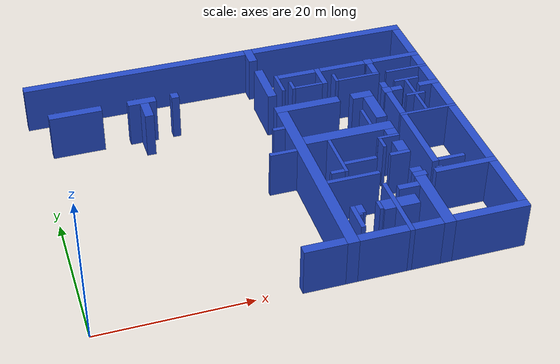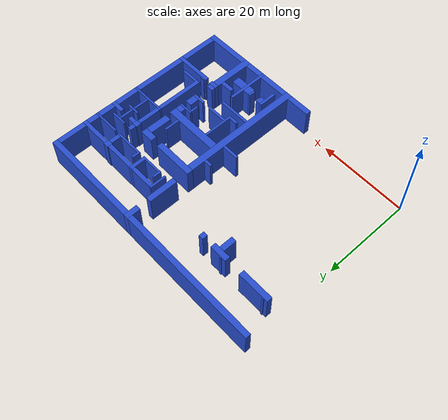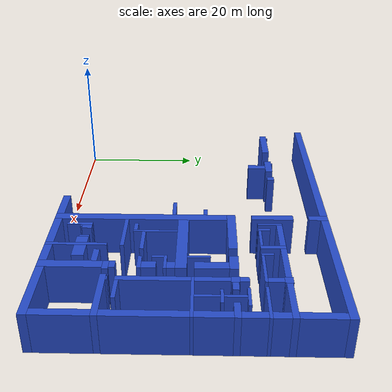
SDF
<sdf version="1.6">
 <world name="default">
  <include><uri>model://sun</uri></include>
  <model name="Area_3_WAJ15-01">
   <static>true</static>
   <link name="link">
    <visual name="cell_101_0">
     <pose>5.2529 34.747 3.2766 0 0 0</pose>
     <geometry><box><size>7.153 1.2192 6.5532</size></box></geometry>
     <material>
      <script><uri>file://media/materials/scripts/gazebo.material</uri><name>Gazebo/Blue</name></script>
     </material>
    </visual>
    <collision name="cell_101_0">
     <pose>5.2529 34.747 3.2766 0 0 0</pose>
     <geometry><box><size>7.153 1.2192 6.5532</size></box></geometry>
     <surface><friction><ode><mu>100</mu><mu2>50</mu2></ode></friction></surface>
    </collision>
    <visual name="cell_101_1">
     <pose>2.667 35.45185 3.2766 0 0 0</pose>
     <geometry><box><size>0.4572 0.1905 6.5532</size></box></geometry>
     <material>
      <script><uri>file://media/materials/scripts/gazebo.material</uri><name>Gazebo/Blue</name></script>
     </material>
    </visual>
    <collision name="cell_101_1">
     <pose>2.667 35.45185 3.2766 0 0 0</pose>
     <geometry><box><size>0.4572 0.1905 6.5532</size></box></geometry>
     <surface><friction><ode><mu>100</mu><mu2>50</mu2></ode></friction></surface>
    </collision>
   </link>
  </model>
  <model name="Area_3_WAI21-00">
   <static>true</static>
   <link name="link">
    <visual name="cell_102_0">
     <pose>14.3634 34.747 3.2766 0 0 0</pose>
     <geometry><box><size>3.886 1.2192 6.5532</size></box></geometry>
     <material>
      <script><uri>file://media/materials/scripts/gazebo.material</uri><name>Gazebo/Blue</name></script>
     </material>
    </visual>
    <collision name="cell_102_0">
     <pose>14.3634 34.747 3.2766 0 0 0</pose>
     <geometry><box><size>3.886 1.2192 6.5532</size></box></geometry>
     <surface><friction><ode><mu>100</mu><mu2>50</mu2></ode></friction></surface>
    </collision>
    <visual name="cell_102_1">
     <pose>14.63 32.6135 3.2766 0 0 0</pose>
     <geometry><box><size>1.2192 3.0478 6.5532</size></box></geometry>
     <material>
      <script><uri>file://media/materials/scripts/gazebo.material</uri><name>Gazebo/Blue</name></script>
     </material>
    </visual>
    <collision name="cell_102_1">
     <pose>14.63 32.6135 3.2766 0 0 0</pose>
     <geometry><box><size>1.2192 3.0478 6.5532</size></box></geometry>
     <surface><friction><ode><mu>100</mu><mu2>50</mu2></ode></friction></surface>
    </collision>
    <visual name="cell_102_2">
     <pose>13.5634 35.45185 3.2766 0 0 0</pose>
     <geometry><box><size>0.4572 0.1905 6.5532</size></box></geometry>
     <material>
      <script><uri>file://media/materials/scripts/gazebo.material</uri><name>Gazebo/Blue</name></script>
     </material>
    </visual>
    <collision name="cell_102_2">
     <pose>13.5634 35.45185 3.2766 0 0 0</pose>
     <geometry><box><size>0.4572 0.1905 6.5532</size></box></geometry>
     <surface><friction><ode><mu>100</mu><mu2>50</mu2></ode></friction></surface>
    </collision>
   </link>
  </model>
  <model name="Area_3_WAI21-01">
   <static>true</static>
   <link name="link">
    <visual name="cell_103_0">
     <pose>18.9734 34.747 3.2766 0 0 0</pose>
     <geometry><box><size>1.0668 1.2192 6.5535</size></box></geometry>
     <material>
      <script><uri>file://media/materials/scripts/gazebo.material</uri><name>Gazebo/Blue</name></script>
     </material>
    </visual>
    <collision name="cell_103_0">
     <pose>18.9734 34.747 3.2766 0 0 0</pose>
     <geometry><box><size>1.0668 1.2192 6.5535</size></box></geometry>
     <surface><friction><ode><mu>100</mu><mu2>50</mu2></ode></friction></surface>
    </collision>
   </link>
  </model>
  <model name="Area_8_WAG24-03">
   <static>true</static>
   <link name="link">
    <visual name="cell_106_0">
     <pose>44.196 15.23365 3.2766 0 0 0</pose>
     <geometry><box><size>1.524 2.1209 6.5532</size></box></geometry>
     <material>
      <script><uri>file://media/materials/scripts/gazebo.material</uri><name>Gazebo/Blue</name></script>
     </material>
    </visual>
    <collision name="cell_106_0">
     <pose>44.196 15.23365 3.2766 0 0 0</pose>
     <geometry><box><size>1.524 2.1209 6.5532</size></box></geometry>
     <surface><friction><ode><mu>100</mu><mu2>50</mu2></ode></friction></surface>
    </collision>
    <visual name="cell_106_1">
     <pose>43.5864 13.8684 3.2766 0 0 0</pose>
     <geometry><box><size>2.7432 0.6096 6.5532</size></box></geometry>
     <material>
      <script><uri>file://media/materials/scripts/gazebo.material</uri><name>Gazebo/Blue</name></script>
     </material>
    </visual>
    <collision name="cell_106_1">
     <pose>43.5864 13.8684 3.2766 0 0 0</pose>
     <geometry><box><size>2.7432 0.6096 6.5532</size></box></geometry>
     <surface><friction><ode><mu>100</mu><mu2>50</mu2></ode></friction></surface>
    </collision>
   </link>
  </model>
  <model name="Area_8_WAF24-04">
   <static>true</static>
   <link name="link">
    <visual name="cell_116_0">
     <pose>43.4719 27.3558 3.2766 0 0 0</pose>
     <geometry><box><size>2.9718 1.3716 6.5532</size></box></geometry>
     <material>
      <script><uri>file://media/materials/scripts/gazebo.material</uri><name>Gazebo/Blue</name></script>
     </material>
    </visual>
    <collision name="cell_116_0">
     <pose>43.4719 27.3558 3.2766 0 0 0</pose>
     <geometry><box><size>2.9718 1.3716 6.5532</size></box></geometry>
     <surface><friction><ode><mu>100</mu><mu2>50</mu2></ode></friction></surface>
    </collision>
    <visual name="cell_116_1">
     <pose>44.196 24.18715 3.2766 0 0 0</pose>
     <geometry><box><size>1.524 4.9657 6.5532</size></box></geometry>
     <material>
      <script><uri>file://media/materials/scripts/gazebo.material</uri><name>Gazebo/Blue</name></script>
     </material>
    </visual>
    <collision name="cell_116_1">
     <pose>44.196 24.18715 3.2766 0 0 0</pose>
     <geometry><box><size>1.524 4.9657 6.5532</size></box></geometry>
     <surface><friction><ode><mu>100</mu><mu2>50</mu2></ode></friction></surface>
    </collision>
   </link>
  </model>
  <model name="Area_10_WAF23-02">
   <static>true</static>
   <link name="link">
    <visual name="cell_108_0">
     <pose>33.9469 3.6703 3.2766 0 0 0</pose>
     <geometry><box><size>0.6096 3.9878 6.5532</size></box></geometry>
     <material>
      <script><uri>file://media/materials/scripts/gazebo.material</uri><name>Gazebo/Blue</name></script>
     </material>
    </visual>
    <collision name="cell_108_0">
     <pose>33.9469 3.6703 3.2766 0 0 0</pose>
     <geometry><box><size>0.6096 3.9878 6.5532</size></box></geometry>
     <surface><friction><ode><mu>100</mu><mu2>50</mu2></ode></friction></surface>
    </collision>
    <visual name="cell_108_1">
     <pose>34.72795 4.9022 3.2766 0 0 0</pose>
     <geometry><box><size>0.9528 1.524 6.5532</size></box></geometry>
     <material>
      <script><uri>file://media/materials/scripts/gazebo.material</uri><name>Gazebo/Blue</name></script>
     </material>
    </visual>
    <collision name="cell_108_1">
     <pose>34.72795 4.9022 3.2766 0 0 0</pose>
     <geometry><box><size>0.9528 1.524 6.5532</size></box></geometry>
     <surface><friction><ode><mu>100</mu><mu2>50</mu2></ode></friction></surface>
    </collision>
    <visual name="cell_108_2">
     <pose>34.49935 3.9878 3.2766 0 0 0</pose>
     <geometry><box><size>0.4953 0.3048 6.5532</size></box></geometry>
     <material>
      <script><uri>file://media/materials/scripts/gazebo.material</uri><name>Gazebo/Blue</name></script>
     </material>
    </visual>
    <collision name="cell_108_2">
     <pose>34.49935 3.9878 3.2766 0 0 0</pose>
     <geometry><box><size>0.4953 0.3048 6.5532</size></box></geometry>
     <surface><friction><ode><mu>100</mu><mu2>50</mu2></ode></friction></surface>
    </collision>
   </link>
  </model>
  <model name="Area_3_4_boundary_WAI23-00">
   <static>true</static>
   <link name="link">
    <pose>31.6989 33.88985 3.2766 0 0 0</pose>
    <visual name="cell_109_0">
     <geometry><box><size>1.2294 6.5911 6.5532</size></box></geometry>
     <material>
      <script><uri>file://media/materials/scripts/gazebo.material</uri><name>Gazebo/Blue</name></script>
     </material>
    </visual>
    <collision name="cell_109_0">
     <geometry><box><size>1.2294 6.5911 6.5532</size></box></geometry>
     <surface><friction><ode><mu>100</mu><mu2>50</mu2></ode></friction></surface>
    </collision>
   </link>
  </model>
  <model name="outwall">
   <static>true</static>
   <link name="link">
    <visual name="cell_111_0">
     <pose>15.2398 42.0622 3.2766 0 0 0</pose>
     <geometry><box><size>31.6988 1.2192 6.5532</size></box></geometry>
     <material>
      <script><uri>file://media/materials/scripts/gazebo.material</uri><name>Gazebo/Blue</name></script>
     </material>
    </visual>
    <collision name="cell_111_0">
     <pose>15.2398 42.0622 3.2766 0 0 0</pose>
     <geometry><box><size>31.6988 1.2192 6.5532</size></box></geometry>
     <surface><friction><ode><mu>100</mu><mu2>50</mu2></ode></friction></surface>
    </collision>
    <visual name="cell_111_1">
     <pose>31.6989 41.1478 3.2766 0 0 0</pose>
     <geometry><box><size>1.2194 3.048 6.5532</size></box></geometry>
     <material>
      <script><uri>file://media/materials/scripts/gazebo.material</uri><name>Gazebo/Blue</name></script>
     </material>
    </visual>
    <collision name="cell_111_1">
     <pose>31.6989 41.1478 3.2766 0 0 0</pose>
     <geometry><box><size>1.2194 3.048 6.5532</size></box></geometry>
     <surface><friction><ode><mu>100</mu><mu2>50</mu2></ode></friction></surface>
    </collision>
    <visual name="cell_111_2">
     <pose>43.5862 42.0622 3.2766 0 0 0</pose>
     <geometry><box><size>22.5552 1.2192 6.5532</size></box></geometry>
     <material>
      <script><uri>file://media/materials/scripts/gazebo.material</uri><name>Gazebo/Blue</name></script>
     </material>
    </visual>
    <collision name="cell_111_2">
     <pose>43.5862 42.0622 3.2766 0 0 0</pose>
     <geometry><box><size>22.5552 1.2192 6.5532</size></box></geometry>
     <surface><friction><ode><mu>100</mu><mu2>50</mu2></ode></friction></surface>
    </collision>
    <visual name="cell_111_3">
     <pose>54.2542 38.3284 3.2766 0 0 0</pose>
     <geometry><box><size>1.2192 6.2484 6.5532</size></box></geometry>
     <material>
      <script><uri>file://media/materials/scripts/gazebo.material</uri><name>Gazebo/Blue</name></script>
     </material>
    </visual>
    <collision name="cell_111_3">
     <pose>54.2542 38.3284 3.2766 0 0 0</pose>
     <geometry><box><size>1.2192 6.2484 6.5532</size></box></geometry>
     <surface><friction><ode><mu>100</mu><mu2>50</mu2></ode></friction></surface>
    </collision>
    <visual name="cell_111_4">
     <pose>33.604 33.2992 3.2766 0 0 0</pose>
     <geometry><box><size>0.4572 3.810 6.5532</size></box></geometry>
     <material>
      <script><uri>file://media/materials/scripts/gazebo.material</uri><name>Gazebo/Blue</name></script>
     </material>
    </visual>
    <collision name="cell_111_4">
     <pose>33.604 33.2992 3.2766 0 0 0</pose>
     <geometry><box><size>0.4572 3.810 6.5532</size></box></geometry>
     <surface><friction><ode><mu>100</mu><mu2>50</mu2></ode></friction></surface>
    </collision>
    <visual name="cell_111_5">
     <pose>36.5377 34.747 3.2766 0 0 0</pose>
     <geometry><box><size>5.4102 0.9144 6.5532</size></box></geometry>
     <material>
      <script><uri>file://media/materials/scripts/gazebo.material</uri><name>Gazebo/Blue</name></script>
     </material>
    </visual>
    <collision name="cell_111_5">
     <pose>36.5377 34.747 3.2766 0 0 0</pose>
     <geometry><box><size>5.4102 0.9144 6.5532</size></box></geometry>
     <surface><friction><ode><mu>100</mu><mu2>50</mu2></ode></friction></surface>
    </collision>
    <visual name="cell_111_6">
     <pose>35.0899 32.3086 3.2766 0 0 0</pose>
     <geometry><box><size>0.4572 1.8288 6.5532</size></box></geometry>
     <material>
      <script><uri>file://media/materials/scripts/gazebo.material</uri><name>Gazebo/Blue</name></script>
     </material>
    </visual>
    <collision name="cell_111_6">
     <pose>35.0899 32.3086 3.2766 0 0 0</pose>
     <geometry><box><size>0.4572 1.8288 6.5532</size></box></geometry>
     <surface><friction><ode><mu>100</mu><mu2>50</mu2></ode></friction></surface>
    </collision>
    <visual name="cell_111_7">
     <pose>37.28065 31.6228 3.2766 0 0 0</pose>
     <geometry><box><size>3.9243 0.4572 6.5532</size></box></geometry>
     <material>
      <script><uri>file://media/materials/scripts/gazebo.material</uri><name>Gazebo/Blue</name></script>
     </material>
    </visual>
    <collision name="cell_111_7">
     <pose>37.28065 31.6228 3.2766 0 0 0</pose>
     <geometry><box><size>3.9243 0.4572 6.5532</size></box></geometry>
     <surface><friction><ode><mu>100</mu><mu2>50</mu2></ode></friction></surface>
    </collision>
    <visual name="cell_111_8">
     <pose>39.6238 33.2992 3.2766 0 0 0</pose>
     <geometry><box><size>0.762 3.81 6.5532</size></box></geometry>
     <material>
      <script><uri>file://media/materials/scripts/gazebo.material</uri><name>Gazebo/Blue</name></script>
     </material>
    </visual>
    <collision name="cell_111_8">
     <pose>39.6238 33.2992 3.2766 0 0 0</pose>
     <geometry><box><size>0.762 3.81 6.5532</size></box></geometry>
     <surface><friction><ode><mu>100</mu><mu2>50</mu2></ode></friction></surface>
    </collision>
    <visual name="cell_111_9">
     <pose>43.3195 34.747 3.2766 0 0 0</pose>
     <geometry><box><size>6.6294 0.9144 6.5532</size></box></geometry>
     <material>
      <script><uri>file://media/materials/scripts/gazebo.material</uri><name>Gazebo/Blue</name></script>
     </material>
    </visual>
    <collision name="cell_111_9">
     <pose>43.3195 34.747 3.2766 0 0 0</pose>
     <geometry><box><size>6.6294 0.9144 6.5532</size></box></geometry>
     <surface><friction><ode><mu>100</mu><mu2>50</mu2></ode></friction></surface>
    </collision>
    <visual name="cell_111_10">
     <pose>41.4145 32.3086 3.2766 0 0 0</pose>
     <geometry><box><size>0.4572 1.8288 6.5532</size></box></geometry>
     <material>
      <script><uri>file://media/materials/scripts/gazebo.material</uri><name>Gazebo/Blue</name></script>
     </material>
    </visual>
    <collision name="cell_111_10">
     <pose>41.4145 32.3086 3.2766 0 0 0</pose>
     <geometry><box><size>0.4572 1.8288 6.5532</size></box></geometry>
     <surface><friction><ode><mu>100</mu><mu2>50</mu2></ode></friction></surface>
    </collision>
    <visual name="cell_111_11">
     <pose>44.67205 31.6228 3.2766 0 0 0</pose>
     <geometry><box><size>6.0579 0.4572 6.5532</size></box></geometry>
     <material>
      <script><uri>file://media/materials/scripts/gazebo.material</uri><name>Gazebo/Blue</name></script>
     </material>
    </visual>
    <collision name="cell_111_11">
     <pose>44.67205 31.6228 3.2766 0 0 0</pose>
     <geometry><box><size>6.0579 0.4572 6.5532</size></box></geometry>
     <surface><friction><ode><mu>100</mu><mu2>50</mu2></ode></friction></surface>
    </collision>
    <visual name="cell_111_12">
     <pose>47.2438 32.9944 3.2766 0 0 0</pose>
     <geometry><box><size>0.9144 2.286 6.5532</size></box></geometry>
     <material>
      <script><uri>file://media/materials/scripts/gazebo.material</uri><name>Gazebo/Blue</name></script>
     </material>
    </visual>
    <collision name="cell_111_12">
     <pose>47.2438 32.9944 3.2766 0 0 0</pose>
     <geometry><box><size>0.9144 2.286 6.5532</size></box></geometry>
     <surface><friction><ode><mu>100</mu><mu2>50</mu2></ode></friction></surface>
    </collision>
    <visual name="cell_111_13">
     <pose>47.2438 34.747 3.2766 0 0 0</pose>
     <geometry><box><size>1.2192 1.2192 6.5532</size></box></geometry>
     <material>
      <script><uri>file://media/materials/scripts/gazebo.material</uri><name>Gazebo/Blue</name></script>
     </material>
    </visual>
    <collision name="cell_111_13">
     <pose>47.2438 34.747 3.2766 0 0 0</pose>
     <geometry><box><size>1.2192 1.2192 6.5532</size></box></geometry>
     <surface><friction><ode><mu>100</mu><mu2>50</mu2></ode></friction></surface>
    </collision>
    <visual name="cell_111_14">
     <pose>51.3586 34.747 3.2766 0 0 0</pose>
     <geometry><box><size>7.0104 0.9144 6.5532</size></box></geometry>
     <material>
      <script><uri>file://media/materials/scripts/gazebo.material</uri><name>Gazebo/Blue</name></script>
     </material>
    </visual>
    <collision name="cell_111_14">
     <pose>51.3586 34.747 3.2766 0 0 0</pose>
     <geometry><box><size>7.0104 0.9144 6.5532</size></box></geometry>
     <surface><friction><ode><mu>100</mu><mu2>50</mu2></ode></friction></surface>
    </collision>
    <visual name="cell_111_15">
     <pose>54.2542 33.0706 3.2766 0 0 0</pose>
     <geometry><box><size>1.2192 2.4384 6.5532</size></box></geometry>
     <material>
      <script><uri>file://media/materials/scripts/gazebo.material</uri><name>Gazebo/Blue</name></script>
     </material>
    </visual>
    <collision name="cell_111_15">
     <pose>54.2542 33.0706 3.2766 0 0 0</pose>
     <geometry><box><size>1.2192 2.4384 6.5532</size></box></geometry>
     <surface><friction><ode><mu>100</mu><mu2>50</mu2></ode></friction></surface>
    </collision>
    <visual name="cell_111_16">
     <pose>51.79675 31.6228 3.2766 0 0 0</pose>
     <geometry><box><size>6.1341 0.4572 6.5532</size></box></geometry>
     <material>
      <script><uri>file://media/materials/scripts/gazebo.material</uri><name>Gazebo/Blue</name></script>
     </material>
    </visual>
    <collision name="cell_111_16">
     <pose>51.79675 31.6228 3.2766 0 0 0</pose>
     <geometry><box><size>6.1341 0.4572 6.5532</size></box></geometry>
     <surface><friction><ode><mu>100</mu><mu2>50</mu2></ode></friction></surface>
    </collision>
    <visual name="cell_111_17">
     <pose>54.2542 29.6417 3.2766 0 0 0</pose>
     <geometry><box><size>1.2192 3.505 6.5532</size></box></geometry>
     <material>
      <script><uri>file://media/materials/scripts/gazebo.material</uri><name>Gazebo/Blue</name></script>
     </material>
    </visual>
    <collision name="cell_111_17">
     <pose>54.2542 29.6417 3.2766 0 0 0</pose>
     <geometry><box><size>1.2192 3.505 6.5532</size></box></geometry>
     <surface><friction><ode><mu>100</mu><mu2>50</mu2></ode></friction></surface>
    </collision>
    <visual name="cell_111_18">
     <pose>53.3779 27.432 3.2766 0 0 0</pose>
     <geometry><box><size>2.9718 0.9144 6.5532</size></box></geometry>
     <material>
      <script><uri>file://media/materials/scripts/gazebo.material</uri><name>Gazebo/Blue</name></script>
     </material>
    </visual>
    <collision name="cell_111_18">
     <pose>53.3779 27.432 3.2766 0 0 0</pose>
     <geometry><box><size>2.9718 0.9144 6.5532</size></box></geometry>
     <surface><friction><ode><mu>100</mu><mu2>50</mu2></ode></friction></surface>
    </collision>
    <visual name="cell_111_19">
     <pose>54.2542 24.384 3.2766 0 0 0</pose>
     <geometry><box><size>1.2192 5.1816 6.5532</size></box></geometry>
     <material>
      <script><uri>file://media/materials/scripts/gazebo.material</uri><name>Gazebo/Blue</name></script>
     </material>
    </visual>
    <collision name="cell_111_19">
     <pose>54.2542 24.384 3.2766 0 0 0</pose>
     <geometry><box><size>1.2192 5.1816 6.5532</size></box></geometry>
     <surface><friction><ode><mu>100</mu><mu2>50</mu2></ode></friction></surface>
    </collision>
    <visual name="cell_111_20">
     <pose>47.2438 28.70835 3.2766 0 0 0</pose>
     <geometry><box><size>0.9144 1.3335 6.5532</size></box></geometry>
     <material>
      <script><uri>file://media/materials/scripts/gazebo.material</uri><name>Gazebo/Blue</name></script>
     </material>
    </visual>
    <collision name="cell_111_20">
     <pose>47.2438 28.70835 3.2766 0 0 0</pose>
     <geometry><box><size>0.9144 1.3335 6.5532</size></box></geometry>
     <surface><friction><ode><mu>100</mu><mu2>50</mu2></ode></friction></surface>
    </collision>
    <visual name="cell_111_21">
     <pose>47.2438 27.432 3.2766 0 0 0</pose>
     <geometry><box><size>1.2192 1.2192 6.5532</size></box></geometry>
     <material>
      <script><uri>file://media/materials/scripts/gazebo.material</uri><name>Gazebo/Blue</name></script>
     </material>
    </visual>
    <collision name="cell_111_21">
     <pose>47.2438 27.432 3.2766 0 0 0</pose>
     <geometry><box><size>1.2192 1.2192 6.5532</size></box></geometry>
     <surface><friction><ode><mu>100</mu><mu2>50</mu2></ode></friction></surface>
    </collision>
    <visual name="cell_111_22">
     <pose>48.6535 27.432 3.2766 0 0 0</pose>
     <geometry><box><size>1.6002 0.9144 6.5532</size></box></geometry>
     <material>
      <script><uri>file://media/materials/scripts/gazebo.material</uri><name>Gazebo/Blue</name></script>
     </material>
    </visual>
    <collision name="cell_111_22">
     <pose>48.6535 27.432 3.2766 0 0 0</pose>
     <geometry><box><size>1.6002 0.9144 6.5532</size></box></geometry>
     <surface><friction><ode><mu>100</mu><mu2>50</mu2></ode></friction></surface>
    </collision>
    <visual name="cell_111_23">
     <pose>47.2438 24.3078 3.2766 0 0 0</pose>
     <geometry><box><size>0.9144 5.0292 6.5532</size></box></geometry>
     <material>
      <script><uri>file://media/materials/scripts/gazebo.material</uri><name>Gazebo/Blue</name></script>
     </material>
    </visual>
    <collision name="cell_111_23">
     <pose>47.2438 24.3078 3.2766 0 0 0</pose>
     <geometry><box><size>0.9144 5.0292 6.5532</size></box></geometry>
     <surface><friction><ode><mu>100</mu><mu2>50</mu2></ode></friction></surface>
    </collision>
    <visual name="cell_111_24">
     <pose>47.2438 16.0782 3.2766 0 0 0</pose>
     <geometry><box><size>0.9144 10.5156 6.5532</size></box></geometry>
     <material>
      <script><uri>file://media/materials/scripts/gazebo.material</uri><name>Gazebo/Blue</name></script>
     </material>
    </visual>
    <collision name="cell_111_24">
     <pose>47.2438 16.0782 3.2766 0 0 0</pose>
     <geometry><box><size>0.9144 10.5156 6.5532</size></box></geometry>
     <surface><friction><ode><mu>100</mu><mu2>50</mu2></ode></friction></surface>
    </collision>
    <visual name="cell_111_25">
     <pose>49.5298 11.1252 3.2766 0 0 0</pose>
     <geometry><box><size>3.6576 0.6096 6.5532</size></box></geometry>
     <material>
      <script><uri>file://media/materials/scripts/gazebo.material</uri><name>Gazebo/Blue</name></script>
     </material>
    </visual>
    <collision name="cell_111_25">
     <pose>49.5298 11.1252 3.2766 0 0 0</pose>
     <geometry><box><size>3.6576 0.6096 6.5532</size></box></geometry>
     <surface><friction><ode><mu>100</mu><mu2>50</mu2></ode></friction></surface>
    </collision>
    <visual name="cell_111_26">
     <pose>50.8252 21.5646 3.2766 0 0 0</pose>
     <geometry><box><size>8.0772 0.4572 6.5532</size></box></geometry>
     <material>
      <script><uri>file://media/materials/scripts/gazebo.material</uri><name>Gazebo/Blue</name></script>
     </material>
    </visual>
    <collision name="cell_111_26">
     <pose>50.8252 21.5646 3.2766 0 0 0</pose>
     <geometry><box><size>8.0772 0.4572 6.5532</size></box></geometry>
     <surface><friction><ode><mu>100</mu><mu2>50</mu2></ode></friction></surface>
    </collision>
    <visual name="cell_111_27">
     <pose>50.7871 29.1465 3.2766 0 0 0</pose>
     <geometry><box><size>3.5814 0.4572 6.5532</size></box></geometry>
     <material>
      <script><uri>file://media/materials/scripts/gazebo.material</uri><name>Gazebo/Blue</name></script>
     </material>
    </visual>
    <collision name="cell_111_27">
     <pose>50.7871 29.1465 3.2766 0 0 0</pose>
     <geometry><box><size>3.5814 0.4572 6.5532</size></box></geometry>
     <surface><friction><ode><mu>100</mu><mu2>50</mu2></ode></friction></surface>
    </collision>
    <visual name="cell_111_28">
     <pose>50.6728 27.33675 3.2766 0 0 0</pose>
     <geometry><box><size>0.4572 3.1623 6.5532</size></box></geometry>
     <material>
      <script><uri>file://media/materials/scripts/gazebo.material</uri><name>Gazebo/Blue</name></script>
     </material>
    </visual>
    <collision name="cell_111_28">
     <pose>50.6728 27.33675 3.2766 0 0 0</pose>
     <geometry><box><size>0.4572 3.1623 6.5532</size></box></geometry>
     <surface><friction><ode><mu>100</mu><mu2>50</mu2></ode></friction></surface>
    </collision>
    <visual name="cell_111_29">
     <pose>50.6728 25.527 3.2766 0 0 0</pose>
     <geometry><box><size>2.7432 0.4572 6.5532</size></box></geometry>
     <material>
      <script><uri>file://media/materials/scripts/gazebo.material</uri><name>Gazebo/Blue</name></script>
     </material>
    </visual>
    <collision name="cell_111_29">
     <pose>50.6728 25.527 3.2766 0 0 0</pose>
     <geometry><box><size>2.7432 0.4572 6.5532</size></box></geometry>
     <surface><friction><ode><mu>100</mu><mu2>50</mu2></ode></friction></surface>
    </collision>
    <visual name="cell_111_30">
     <pose>50.6728 23.5458 3.2766 0 0 0</pose>
     <geometry><box><size>0.4572 3.5052 6.5532</size></box></geometry>
     <material>
      <script><uri>file://media/materials/scripts/gazebo.material</uri><name>Gazebo/Blue</name></script>
     </material>
    </visual>
    <collision name="cell_111_30">
     <pose>50.6728 23.5458 3.2766 0 0 0</pose>
     <geometry><box><size>0.4572 3.5052 6.5532</size></box></geometry>
     <surface><friction><ode><mu>100</mu><mu2>50</mu2></ode></friction></surface>
    </collision>
    <visual name="cell_111_31">
     <pose>54.2542 15.4686 3.2766 0 0 0</pose>
     <geometry><box><size>1.2192 11.7348 6.5532</size></box></geometry>
     <material>
      <script><uri>file://media/materials/scripts/gazebo.material</uri><name>Gazebo/Blue</name></script>
     </material>
    </visual>
    <collision name="cell_111_31">
     <pose>54.2542 15.4686 3.2766 0 0 0</pose>
     <geometry><box><size>1.2192 11.7348 6.5532</size></box></geometry>
     <surface><friction><ode><mu>100</mu><mu2>50</mu2></ode></friction></surface>
    </collision>
    <visual name="cell_111_32">
     <pose>47.2438 9.7155 3.2766 0 0 0</pose>
     <geometry><box><size>0.9144 0.2286 6.5532</size></box></geometry>
     <material>
      <script><uri>file://media/materials/scripts/gazebo.material</uri><name>Gazebo/Blue</name></script>
     </material>
    </visual>
    <collision name="cell_111_32">
     <pose>47.2438 9.7155 3.2766 0 0 0</pose>
     <geometry><box><size>0.9144 0.2286 6.5532</size></box></geometry>
     <surface><friction><ode><mu>100</mu><mu2>50</mu2></ode></friction></surface>
    </collision>
    <visual name="cell_111_33">
     <pose>50.6347 9.144 3.2766 0 0 0</pose>
     <geometry><box><size>8.4582 0.9144 6.5532</size></box></geometry>
     <material>
      <script><uri>file://media/materials/scripts/gazebo.material</uri><name>Gazebo/Blue</name></script>
     </material>
    </visual>
    <collision name="cell_111_33">
     <pose>50.6347 9.144 3.2766 0 0 0</pose>
     <geometry><box><size>8.4582 0.9144 6.5532</size></box></geometry>
     <surface><friction><ode><mu>100</mu><mu2>50</mu2></ode></friction></surface>
    </collision>
    <visual name="cell_111_34">
     <pose>54.2542 4.6482 3.2766 0 0 0</pose>
     <geometry><box><size>1.2192 8.0772 6.5532</size></box></geometry>
     <material>
      <script><uri>file://media/materials/scripts/gazebo.material</uri><name>Gazebo/Blue</name></script>
     </material>
    </visual>
    <collision name="cell_111_34">
     <pose>54.2542 4.6482 3.2766 0 0 0</pose>
     <geometry><box><size>1.2192 8.0772 6.5532</size></box></geometry>
     <surface><friction><ode><mu>100</mu><mu2>50</mu2></ode></friction></surface>
    </collision>
    <visual name="cell_111_35">
     <pose>49.9108 0 3.2766 0 0 0</pose>
     <geometry><box><size>9.906 1.2192 6.5532</size></box></geometry>
     <material>
      <script><uri>file://media/materials/scripts/gazebo.material</uri><name>Gazebo/Blue</name></script>
     </material>
    </visual>
    <collision name="cell_111_35">
     <pose>49.9108 0 3.2766 0 0 0</pose>
     <geometry><box><size>9.906 1.2192 6.5532</size></box></geometry>
     <surface><friction><ode><mu>100</mu><mu2>50</mu2></ode></friction></surface>
    </collision>
    <visual name="cell_111_36">
     <pose>44.1958 10.0584 3.2766 0 0 0</pose>
     <geometry><box><size>1.524 0.9144 6.5532</size></box></geometry>
     <material>
      <script><uri>file://media/materials/scripts/gazebo.material</uri><name>Gazebo/Blue</name></script>
     </material>
    </visual>
    <collision name="cell_111_36">
     <pose>44.1958 10.0584 3.2766 0 0 0</pose>
     <geometry><box><size>1.524 0.9144 6.5532</size></box></geometry>
     <surface><friction><ode><mu>100</mu><mu2>50</mu2></ode></friction></surface>
    </collision>
    <visual name="cell_111_37">
     <pose>44.3482 9.144 3.2766 0 0 0</pose>
     <geometry><box><size>1.8288 0.9144 6.5532</size></box></geometry>
     <material>
      <script><uri>file://media/materials/scripts/gazebo.material</uri><name>Gazebo/Blue</name></script>
     </material>
    </visual>
    <collision name="cell_111_37">
     <pose>44.3482 9.144 3.2766 0 0 0</pose>
     <geometry><box><size>1.8288 0.9144 6.5532</size></box></geometry>
     <surface><friction><ode><mu>100</mu><mu2>50</mu2></ode></friction></surface>
    </collision>
    <visual name="cell_111_38">
     <pose>42.04315 7.3406 3.2766 0 0 0</pose>
     <geometry><box><size>2.7813 0.9144 6.5532</size></box></geometry>
     <material>
      <script><uri>file://media/materials/scripts/gazebo.material</uri><name>Gazebo/Blue</name></script>
     </material>
    </visual>
    <collision name="cell_111_38">
     <pose>42.04315 7.3406 3.2766 0 0 0</pose>
     <geometry><box><size>2.7813 0.9144 6.5532</size></box></geometry>
     <surface><friction><ode><mu>100</mu><mu2>50</mu2></ode></friction></surface>
    </collision>
    <visual name="cell_111_39">
     <pose>44.1958 4.0386 3.2766 0 0 0</pose>
     <geometry><box><size>1.524 9.2964 6.5532</size></box></geometry>
     <material>
      <script><uri>file://media/materials/scripts/gazebo.material</uri><name>Gazebo/Blue</name></script>
     </material>
    </visual>
    <collision name="cell_111_39">
     <pose>44.1958 4.0386 3.2766 0 0 0</pose>
     <geometry><box><size>1.524 9.2964 6.5532</size></box></geometry>
     <surface><friction><ode><mu>100</mu><mu2>50</mu2></ode></friction></surface>
    </collision>
    <visual name="cell_111_40">
     <pose>41.5288 0 3.2766 0 0 0</pose>
     <geometry><box><size>3.81 1.2192 6.5532</size></box></geometry>
     <material>
      <script><uri>file://media/materials/scripts/gazebo.material</uri><name>Gazebo/Blue</name></script>
     </material>
    </visual>
    <collision name="cell_111_40">
     <pose>41.5288 0 3.2766 0 0 0</pose>
     <geometry><box><size>3.81 1.2192 6.5532</size></box></geometry>
     <surface><friction><ode><mu>100</mu><mu2>50</mu2></ode></friction></surface>
    </collision>
    <visual name="cell_111_41">
     <pose>37.2616 4.9022 3.2766 0 0 0</pose>
     <geometry><box><size>0.4572 1.524 6.5532</size></box></geometry>
     <material>
      <script><uri>file://media/materials/scripts/gazebo.material</uri><name>Gazebo/Blue</name></script>
     </material>
    </visual>
    <collision name="cell_111_41">
     <pose>37.2616 4.9022 3.2766 0 0 0</pose>
     <geometry><box><size>0.4572 1.524 6.5532</size></box></geometry>
     <surface><friction><ode><mu>100</mu><mu2>50</mu2></ode></friction></surface>
    </collision>
    <visual name="cell_111_42">
     <pose>38.2522 4.7498 3.2766 0 0 0</pose>
     <geometry><box><size>1.524 1.8288 6.5532</size></box></geometry>
     <material>
      <script><uri>file://media/materials/scripts/gazebo.material</uri><name>Gazebo/Blue</name></script>
     </material>
    </visual>
    <collision name="cell_111_42">
     <pose>38.2522 4.7498 3.2766 0 0 0</pose>
     <geometry><box><size>1.524 1.8288 6.5532</size></box></geometry>
     <surface><friction><ode><mu>100</mu><mu2>50</mu2></ode></friction></surface>
    </collision>
    <visual name="cell_111_43">
     <pose>40.9192 4.7498 3.2766 0 0 0</pose>
     <geometry><box><size>2.5908 1.8288 6.5532</size></box></geometry>
     <material>
      <script><uri>file://media/materials/scripts/gazebo.material</uri><name>Gazebo/Blue</name></script>
     </material>
    </visual>
    <collision name="cell_111_43">
     <pose>40.9192 4.7498 3.2766 0 0 0</pose>
     <geometry><box><size>2.5908 1.8288 6.5532</size></box></geometry>
     <surface><friction><ode><mu>100</mu><mu2>50</mu2></ode></friction></surface>
    </collision>
    <visual name="cell_111_44">
     <pose>39.319 4.01955 3.2766 0 0 0</pose>
     <geometry><box><size>0.6096 9.2583 6.5532</size></box></geometry>
     <material>
      <script><uri>file://media/materials/scripts/gazebo.material</uri><name>Gazebo/Blue</name></script>
     </material>
    </visual>
    <collision name="cell_111_44">
     <pose>39.319 4.01955 3.2766 0 0 0</pose>
     <geometry><box><size>0.6096 9.2583 6.5532</size></box></geometry>
     <surface><friction><ode><mu>100</mu><mu2>50</mu2></ode></friction></surface>
    </collision>
    <visual name="cell_111_45">
     <pose>35.8138 0 3.2766 0 0 0</pose>
     <geometry><box><size>6.4008 1.2192 6.5532</size></box></geometry>
     <material>
      <script><uri>file://media/materials/scripts/gazebo.material</uri><name>Gazebo/Blue</name></script>
     </material>
    </visual>
    <collision name="cell_111_45">
     <pose>35.8138 0 3.2766 0 0 0</pose>
     <geometry><box><size>6.4008 1.2192 6.5532</size></box></geometry>
     <surface><friction><ode><mu>100</mu><mu2>50</mu2></ode></friction></surface>
    </collision>
    <visual name="cell_111_46">
     <pose>30.27045 23.3172 3.2766 0 0 0</pose>
     <geometry><box><size>1.6383 0.6096 6.5532</size></box></geometry>
     <material>
      <script><uri>file://media/materials/scripts/gazebo.material</uri><name>Gazebo/Blue</name></script>
     </material>
    </visual>
    <collision name="cell_111_46">
     <pose>30.27045 23.3172 3.2766 0 0 0</pose>
     <geometry><box><size>1.6383 0.6096 6.5532</size></box></geometry>
     <surface><friction><ode><mu>100</mu><mu2>50</mu2></ode></friction></surface>
    </collision>
    <visual name="cell_111_47">
     <pose>29.2608 18.288 3.2766 0 0 0</pose>
     <geometry><box><size>3.6576 0.6096 6.5532</size></box></geometry>
     <material>
      <script><uri>file://media/materials/scripts/gazebo.material</uri><name>Gazebo/Blue</name></script>
     </material>
    </visual>
    <collision name="cell_111_47">
     <pose>29.2608 18.288 3.2766 0 0 0</pose>
     <geometry><box><size>3.6576 0.6096 6.5532</size></box></geometry>
     <surface><friction><ode><mu>100</mu><mu2>50</mu2></ode></friction></surface>
    </collision>
    <visual name="cell_111_48">
     <pose>35.6223 27.3558 3.2766 0 0 0</pose>
     <geometry><box><size>9.0682 1.3716 6.5532</size></box></geometry>
     <material>
      <script><uri>file://media/materials/scripts/gazebo.material</uri><name>Gazebo/Blue</name></script>
     </material>
    </visual>
    <collision name="cell_111_48">
     <pose>35.6223 27.3558 3.2766 0 0 0</pose>
     <geometry><box><size>9.0682 1.3716 6.5532</size></box></geometry>
     <surface><friction><ode><mu>100</mu><mu2>50</mu2></ode></friction></surface>
    </collision>
    <visual name="cell_111_49">
     <pose>31.8515 13.0302 3.2766 0 0 0</pose>
     <geometry><box><size>1.5238 27.2796 6.5532</size></box></geometry>
     <material>
      <script><uri>file://media/materials/scripts/gazebo.material</uri><name>Gazebo/Blue</name></script>
     </material>
    </visual>
    <collision name="cell_111_49">
     <pose>31.8515 13.0302 3.2766 0 0 0</pose>
     <geometry><box><size>1.5238 27.2796 6.5532</size></box></geometry>
     <surface><friction><ode><mu>100</mu><mu2>50</mu2></ode></friction></surface>
    </collision>
    <visual name="cell_111_50">
     <pose>38.7857 19.8374 3.2766 0 0 0</pose>
     <geometry><box><size>12.3446 1.6764 6.5532</size></box></geometry>
     <material>
      <script><uri>file://media/materials/scripts/gazebo.material</uri><name>Gazebo/Blue</name></script>
     </material>
    </visual>
    <collision name="cell_111_50">
     <pose>38.7857 19.8374 3.2766 0 0 0</pose>
     <geometry><box><size>12.3446 1.6764 6.5532</size></box></geometry>
     <surface><friction><ode><mu>100</mu><mu2>50</mu2></ode></friction></surface>
    </collision>
    <visual name="cell_111_51">
     <pose>35.7378 15.61465 3.2766 0 0 0</pose>
     <geometry><box><size>0.4572 6.7691 6.5532</size></box></geometry>
     <material>
      <script><uri>file://media/materials/scripts/gazebo.material</uri><name>Gazebo/Blue</name></script>
     </material>
    </visual>
    <collision name="cell_111_51">
     <pose>35.7378 15.61465 3.2766 0 0 0</pose>
     <geometry><box><size>0.4572 6.7691 6.5532</size></box></geometry>
     <surface><friction><ode><mu>100</mu><mu2>50</mu2></ode></friction></surface>
    </collision>
    <visual name="cell_111_52">
     <pose>34.5947 12.5349 3.2766 0 0 0</pose>
     <geometry><box><size>1.829 0.6096 6.5532</size></box></geometry>
     <material>
      <script><uri>file://media/materials/scripts/gazebo.material</uri><name>Gazebo/Blue</name></script>
     </material>
    </visual>
    <collision name="cell_111_52">
     <pose>34.5947 12.5349 3.2766 0 0 0</pose>
     <geometry><box><size>1.829 0.6096 6.5532</size></box></geometry>
     <surface><friction><ode><mu>100</mu><mu2>50</mu2></ode></friction></surface>
    </collision>
    <visual name="cell_111_53">
     <pose>38.1762 13.8684 3.2766 0 0 0</pose>
     <geometry><box><size>4.4196 0.6096 6.5532</size></box></geometry>
     <material>
      <script><uri>file://media/materials/scripts/gazebo.material</uri><name>Gazebo/Blue</name></script>
     </material>
    </visual>
    <collision name="cell_111_53">
     <pose>38.1762 13.8684 3.2766 0 0 0</pose>
     <geometry><box><size>4.4196 0.6096 6.5532</size></box></geometry>
     <surface><friction><ode><mu>100</mu><mu2>50</mu2></ode></friction></surface>
    </collision>
    <visual name="cell_111_54">
     <pose>42.2148 22.3774 3.2766 0 0 0</pose>
     <geometry><box><size>0.4572 3.4036 6.5532</size></box></geometry>
     <material>
      <script><uri>file://media/materials/scripts/gazebo.material</uri><name>Gazebo/Blue</name></script>
     </material>
    </visual>
    <collision name="cell_111_54">
     <pose>42.2148 22.3774 3.2766 0 0 0</pose>
     <geometry><box><size>0.4572 3.4036 6.5532</size></box></geometry>
     <surface><friction><ode><mu>100</mu><mu2>50</mu2></ode></friction></surface>
    </collision>
    <visual name="cell_111_55">
     <pose>44.196 18.3896 3.2766 0 0 0</pose>
     <geometry><box><size>1.524 1.2192 6.5532</size></box></geometry>
     <material>
      <script><uri>file://media/materials/scripts/gazebo.material</uri><name>Gazebo/Blue</name></script>
     </material>
    </visual>
    <collision name="cell_111_55">
     <pose>44.196 18.3896 3.2766 0 0 0</pose>
     <geometry><box><size>1.524 1.2192 6.5532</size></box></geometry>
     <surface><friction><ode><mu>100</mu><mu2>50</mu2></ode></friction></surface>
    </collision>
    <visual name="cell_111_56">
     <pose>43.4671 17.5514 3.2766 0 0 0</pose>
     <geometry><box><size>2.9818 0.4572 6.5532</size></box></geometry>
     <material>
      <script><uri>file://media/materials/scripts/gazebo.material</uri><name>Gazebo/Blue</name></script>
     </material>
    </visual>
    <collision name="cell_111_56">
     <pose>43.4671 17.5514 3.2766 0 0 0</pose>
     <geometry><box><size>2.9818 0.4572 6.5532</size></box></geometry>
     <surface><friction><ode><mu>100</mu><mu2>50</mu2></ode></friction></surface>
    </collision>
    <visual name="cell_111_57">
     <pose>42.2148 16.4338 3.2766 0 0 0</pose>
     <geometry><box><size>0.4572 1.778 6.5532</size></box></geometry>
     <material>
      <script><uri>file://media/materials/scripts/gazebo.material</uri><name>Gazebo/Blue</name></script>
     </material>
    </visual>
    <collision name="cell_111_57">
     <pose>42.2148 16.4338 3.2766 0 0 0</pose>
     <geometry><box><size>0.4572 1.778 6.5532</size></box></geometry>
     <surface><friction><ode><mu>100</mu><mu2>50</mu2></ode></friction></surface>
    </collision>
    <visual name="cell_111_58">
     <pose>28.3719 0 3.2766 0 0 0</pose>
     <geometry><box><size>5.4360 1.2192 6.5532</size></box></geometry>
     <material>
      <script><uri>file://media/materials/scripts/gazebo.material</uri><name>Gazebo/Blue</name></script>
     </material>
    </visual>
    <collision name="cell_111_58">
     <pose>28.3719 0 3.2766 0 0 0</pose>
     <geometry><box><size>5.4360 1.2192 6.5532</size></box></geometry>
     <surface><friction><ode><mu>100</mu><mu2>50</mu2></ode></friction></surface>
    </collision>
    <visual name="cell_111_59">
     <pose>36.1186 10.8966 3.2766 0 0 0</pose>
     <geometry><box><size>7.0104 0.6096 6.5532</size></box></geometry>
     <material>
      <script><uri>file://media/materials/scripts/gazebo.material</uri><name>Gazebo/Blue</name></script>
     </material>
    </visual>
    <collision name="cell_111_59">
     <pose>36.1186 10.8966 3.2766 0 0 0</pose>
     <geometry><box><size>7.0104 0.6096 6.5532</size></box></geometry>
     <surface><friction><ode><mu>100</mu><mu2>50</mu2></ode></friction></surface>
    </collision>
   </link>
  </model>
 </world>
</sdf>
